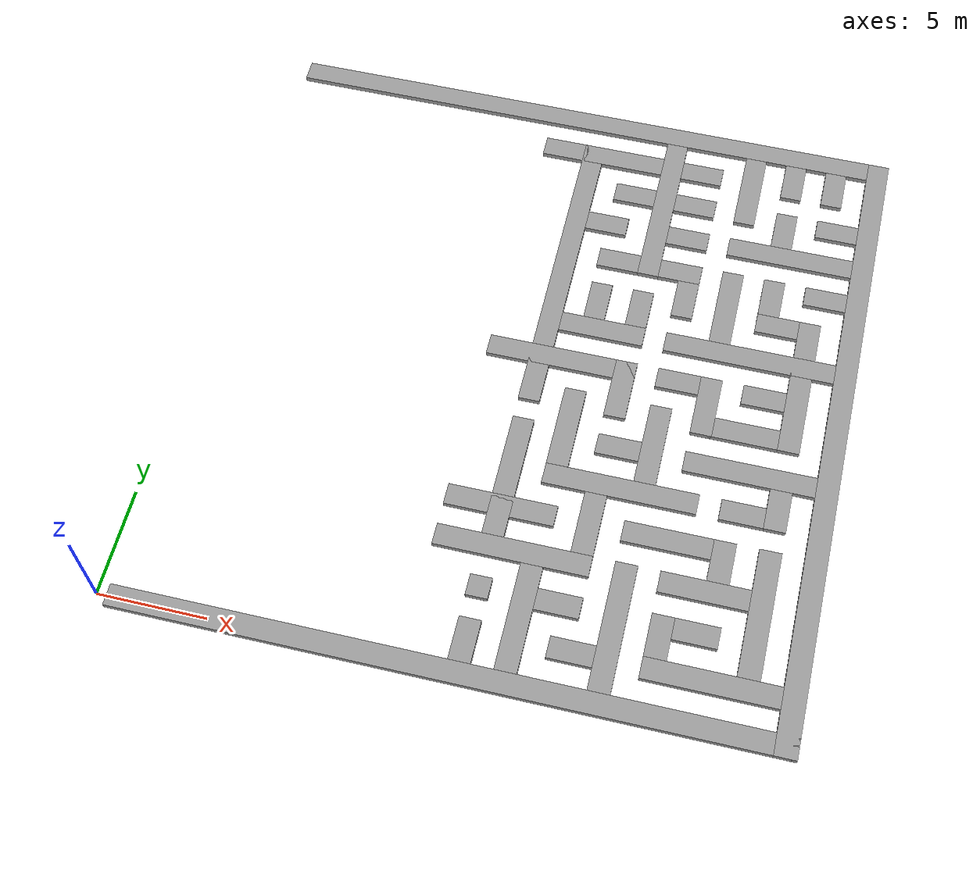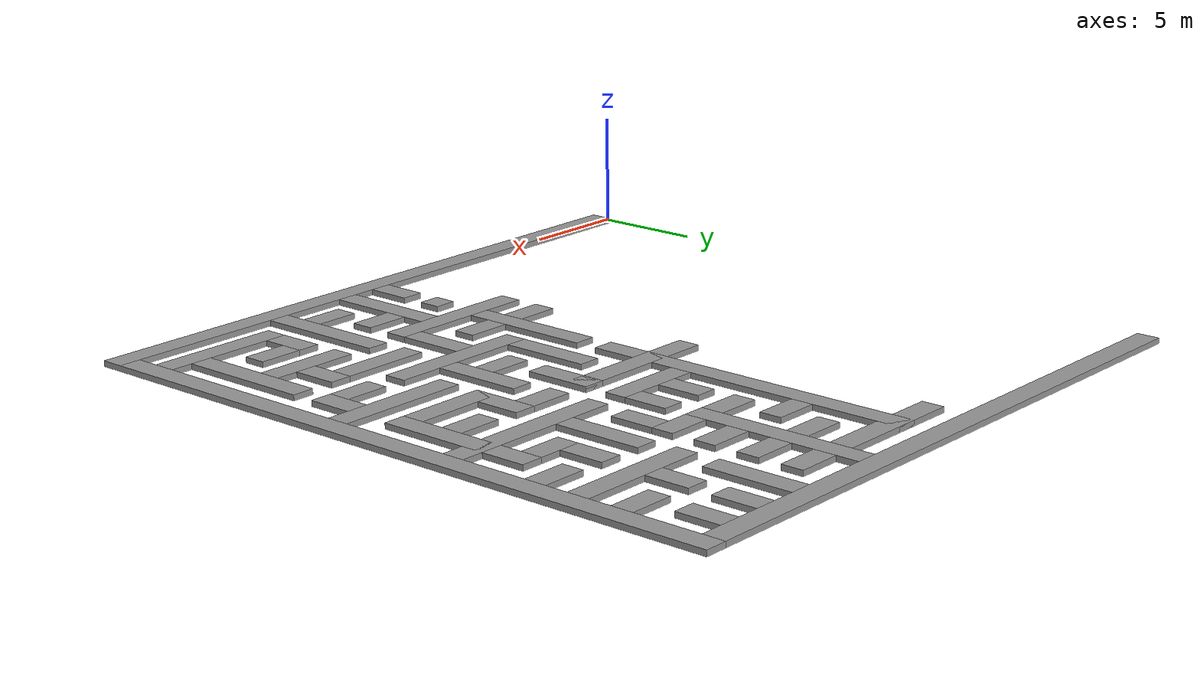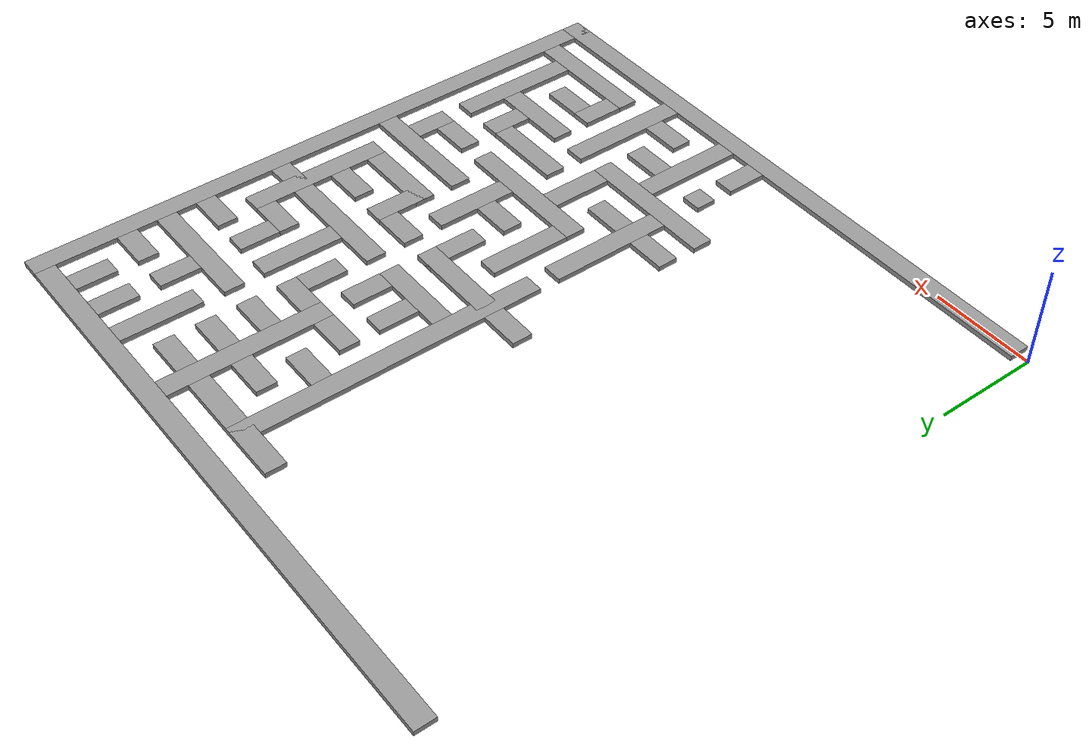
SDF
<sdf version="1.7">
 <model name="medium_maze">
  <pose>15 15 0 0 -0 0</pose>
  <link name="Wall_100">
   <collision name="Wall_100_Collision">
    <geometry><box><size>1 1 0.25</size></box></geometry>
    <pose>0 0 0.125 0 -0 0</pose>
   </collision>
   <visual name="Wall_100_Visual">
    <pose>0 0 0.125 0 -0 0</pose>
    <geometry><box><size>1 1 0.25</size></box></geometry>
    <material>
     <script><uri>file://media/materials/scripts/gazebo.material</uri><name>Gazebo/Grey</name></script>
     <ambient>1 1 1 1</ambient>
    </material>
    <meta><layer>0</layer></meta>
   </visual>
   <pose>1 -11 0 0 -0 0</pose>
  </link>
  <link name="Wall_110">
   <collision name="Wall_110_Collision">
    <geometry><box><size>2 1 0.25</size></box></geometry>
    <pose>0 0 0.125 0 -0 0</pose>
   </collision>
   <visual name="Wall_110_Visual">
    <pose>0 0 0.125 0 -0 0</pose>
    <geometry><box><size>2 1 0.25</size></box></geometry>
    <material>
     <script><uri>file://media/materials/scripts/gazebo.material</uri><name>Gazebo/Grey</name></script>
     <ambient>1 1 1 1</ambient>
    </material>
    <meta><layer>0</layer></meta>
   </visual>
   <pose>1 -13.5 0 0 -0 1.5708</pose>
  </link>
  <link name="Wall_112">
   <collision name="Wall_112_Collision">
    <geometry><box><size>5 1 0.25</size></box></geometry>
    <pose>0 0 0.125 0 -0 0</pose>
   </collision>
   <visual name="Wall_112_Visual">
    <pose>0 0 0.125 0 -0 0</pose>
    <geometry><box><size>5 1 0.25</size></box></geometry>
    <material>
     <script><uri>file://media/materials/scripts/gazebo.material</uri><name>Gazebo/Grey</name></script>
     <ambient>1 1 1 1</ambient>
    </material>
    <meta><layer>0</layer></meta>
   </visual>
   <pose>3 -12 0 0 -0 1.5708</pose>
  </link>
  <link name="Wall_114">
   <collision name="Wall_114_Collision">
    <geometry><box><size>2 1 0.25</size></box></geometry>
    <pose>0 0 0.125 0 -0 0</pose>
   </collision>
   <visual name="Wall_114_Visual">
    <pose>0 0 0.125 0 -0 0</pose>
    <geometry><box><size>2 1 0.25</size></box></geometry>
    <material>
     <script><uri>file://media/materials/scripts/gazebo.material</uri><name>Gazebo/Grey</name></script>
     <ambient>1 1 1 1</ambient>
    </material>
    <meta><layer>0</layer></meta>
   </visual>
   <pose>4.5 -11 0 0 -0 0</pose>
  </link>
  <link name="Wall_116">
   <collision name="Wall_116_Collision">
    <geometry><box><size>7 1 0.25</size></box></geometry>
    <pose>0 0 0.125 0 -0 0</pose>
   </collision>
   <visual name="Wall_116_Visual">
    <pose>0 0 0.125 0 -0 0</pose>
    <geometry><box><size>7 1 0.25</size></box></geometry>
    <material>
     <script><uri>file://media/materials/scripts/gazebo.material</uri><name>Gazebo/Grey</name></script>
     <ambient>1 1 1 1</ambient>
    </material>
    <meta><layer>0</layer></meta>
   </visual>
   <pose>2 -9 0 0 -0 0</pose>
  </link>
  <link name="Wall_118">
   <collision name="Wall_118_Collision">
    <geometry><box><size>6 1 0.25</size></box></geometry>
    <pose>0 0 0.125 0 -0 0</pose>
   </collision>
   <visual name="Wall_118_Visual">
    <pose>0 0 0.125 0 -0 0</pose>
    <geometry><box><size>6 1 0.25</size></box></geometry>
    <material>
     <script><uri>file://media/materials/scripts/gazebo.material</uri><name>Gazebo/Grey</name></script>
     <ambient>1 1 1 1</ambient>
    </material>
    <meta><layer>0</layer></meta>
   </visual>
   <pose>1 -5.5 0 0 -0 1.5708</pose>
  </link>
  <link name="Wall_120">
   <collision name="Wall_120_Collision">
    <geometry><box><size>4 1 0.25</size></box></geometry>
    <pose>0 0 0.125 0 -0 0</pose>
   </collision>
   <visual name="Wall_120_Visual">
    <pose>0 0 0.125 0 -0 0</pose>
    <geometry><box><size>4 1 0.25</size></box></geometry>
    <material>
     <script><uri>file://media/materials/scripts/gazebo.material</uri><name>Gazebo/Grey</name></script>
     <ambient>1 1 1 1</ambient>
    </material>
    <meta><layer>0</layer></meta>
   </visual>
   <pose>7 -2.5 0 0 -0 1.5708</pose>
  </link>
  <link name="Wall_122">
   <collision name="Wall_122_Collision">
    <geometry><box><size>4 1 0.25</size></box></geometry>
    <pose>0 0 0.125 0 -0 0</pose>
   </collision>
   <visual name="Wall_122_Visual">
    <pose>0 0 0.125 0 -0 0</pose>
    <geometry><box><size>4 1 0.25</size></box></geometry>
    <material>
     <script><uri>file://media/materials/scripts/gazebo.material</uri><name>Gazebo/Grey</name></script>
     <ambient>1 1 1 1</ambient>
    </material>
    <meta><layer>0</layer></meta>
   </visual>
   <pose>3 -2.5 0 0 -0 1.5708</pose>
  </link>
  <link name="Wall_124">
   <collision name="Wall_124_Collision">
    <geometry><box><size>5 1 0.25</size></box></geometry>
    <pose>0 0 0.125 0 -0 0</pose>
   </collision>
   <visual name="Wall_124_Visual">
    <pose>0 0 0.125 0 -0 0</pose>
    <geometry><box><size>5 1 0.25</size></box></geometry>
    <material>
     <script><uri>file://media/materials/scripts/gazebo.material</uri><name>Gazebo/Grey</name></script>
     <ambient>1 1 1 1</ambient>
    </material>
    <meta><layer>0</layer></meta>
   </visual>
   <pose>1 -7 0 0 -0 0</pose>
  </link>
  <link name="Wall_126">
   <collision name="Wall_126_Collision">
    <geometry><box><size>6 1 0.25</size></box></geometry>
    <pose>0 0 0.125 0 -0 0</pose>
   </collision>
   <visual name="Wall_126_Visual">
    <pose>0 0 0.125 0 -0 0</pose>
    <geometry><box><size>6 1 0.25</size></box></geometry>
    <material>
     <script><uri>file://media/materials/scripts/gazebo.material</uri><name>Gazebo/Grey</name></script>
     <ambient>1 1 1 1</ambient>
    </material>
    <meta><layer>0</layer></meta>
   </visual>
   <pose>11.5 -13 0 0 -0 3.14159</pose>
  </link>
  <link name="Wall_128">
   <collision name="Wall_128_Collision">
    <geometry><box><size>6 1 0.25</size></box></geometry>
    <pose>0 0 0.125 0 -0 0</pose>
   </collision>
   <visual name="Wall_128_Visual">
    <pose>0 0 0.125 0 -0 0</pose>
    <geometry><box><size>6 1 0.25</size></box></geometry>
    <material>
     <script><uri>file://media/materials/scripts/gazebo.material</uri><name>Gazebo/Grey</name></script>
     <ambient>1 1 1 1</ambient>
    </material>
    <meta><layer>0</layer></meta>
   </visual>
   <pose>7 -11.5 0 0 -0 1.5708</pose>
  </link>
  <link name="Wall_130">
   <collision name="Wall_130_Collision">
    <geometry><box><size>3 1 0.25</size></box></geometry>
    <pose>0 0 0.125 0 -0 0</pose>
   </collision>
   <visual name="Wall_130_Visual">
    <pose>0 0 0.125 0 -0 0</pose>
    <geometry><box><size>3 1 0.25</size></box></geometry>
    <material>
     <script><uri>file://media/materials/scripts/gazebo.material</uri><name>Gazebo/Grey</name></script>
     <ambient>1 1 1 1</ambient>
    </material>
    <meta><layer>0</layer></meta>
   </visual>
   <pose>5 -7 0 0 -0 1.5708</pose>
  </link>
  <link name="Wall_132">
   <collision name="Wall_132_Collision">
    <geometry><box><size>2 1 0.25</size></box></geometry>
    <pose>0 0 0.125 0 -0 0</pose>
   </collision>
   <visual name="Wall_132_Visual">
    <pose>0 0 0.125 0 -0 0</pose>
    <geometry><box><size>2 1 0.25</size></box></geometry>
    <material>
     <script><uri>file://media/materials/scripts/gazebo.material</uri><name>Gazebo/Grey</name></script>
     <ambient>1 1 1 1</ambient>
    </material>
    <meta><layer>0</layer></meta>
   </visual>
   <pose>10.5 -11 0 0 -0 0</pose>
  </link>
  <link name="Wall_134">
   <collision name="Wall_134_Collision">
    <geometry><box><size>2 1 0.25</size></box></geometry>
    <pose>0 0 0.125 0 -0 0</pose>
   </collision>
   <visual name="Wall_134_Visual">
    <pose>0 0 0.125 0 -0 0</pose>
    <geometry><box><size>2 1 0.25</size></box></geometry>
    <material>
     <script><uri>file://media/materials/scripts/gazebo.material</uri><name>Gazebo/Grey</name></script>
     <ambient>1 1 1 1</ambient>
    </material>
    <meta><layer>0</layer></meta>
   </visual>
   <pose>9 -11.5 0 0 -0 1.5708</pose>
  </link>
  <link name="Wall_136">
   <collision name="Wall_136_Collision">
    <geometry><box><size>2 1 0.25</size></box></geometry>
    <pose>0 0 0.125 0 -0 0</pose>
   </collision>
   <visual name="Wall_136_Visual">
    <pose>0 0 0.125 0 -0 0</pose>
    <geometry><box><size>2 1 0.25</size></box></geometry>
    <material>
     <script><uri>file://media/materials/scripts/gazebo.material</uri><name>Gazebo/Grey</name></script>
     <ambient>1 1 1 1</ambient>
    </material>
    <meta><layer>0</layer></meta>
   </visual>
   <pose>5.5 -3 0 0 -0 3.14159</pose>
  </link>
  <link name="Wall_138">
   <collision name="Wall_138_Collision">
    <geometry><box><size>7 1 0.25</size></box></geometry>
    <pose>0 0 0.125 0 -0 0</pose>
   </collision>
   <visual name="Wall_138_Visual">
    <pose>0 0 0.125 0 -0 0</pose>
    <geometry><box><size>7 1 0.25</size></box></geometry>
    <material>
     <script><uri>file://media/materials/scripts/gazebo.material</uri><name>Gazebo/Grey</name></script>
     <ambient>1 1 1 1</ambient>
    </material>
    <meta><layer>0</layer></meta>
   </visual>
   <pose>6 -5 0 0 -0 0</pose>
  </link>
  <link name="Wall_140">
   <collision name="Wall_140_Collision">
    <geometry><box><size>2 1 0.25</size></box></geometry>
    <pose>0 0 0.125 0 -0 0</pose>
   </collision>
   <visual name="Wall_140_Visual">
    <pose>0 0 0.125 0 -0 0</pose>
    <geometry><box><size>2 1 0.25</size></box></geometry>
    <material>
     <script><uri>file://media/materials/scripts/gazebo.material</uri><name>Gazebo/Grey</name></script>
     <ambient>1 1 1 1</ambient>
    </material>
    <meta><layer>0</layer></meta>
   </visual>
   <pose>5.5 -13 0 0 -0 3.14159</pose>
  </link>
  <link name="Wall_142">
   <collision name="Wall_142_Collision">
    <geometry><box><size>4 1 0.25</size></box></geometry>
    <pose>0 0 0.125 0 -0 0</pose>
   </collision>
   <visual name="Wall_142_Visual">
    <pose>0 0 0.125 0 -0 0</pose>
    <geometry><box><size>4 1 0.25</size></box></geometry>
    <material>
     <script><uri>file://media/materials/scripts/gazebo.material</uri><name>Gazebo/Grey</name></script>
     <ambient>1 1 1 1</ambient>
    </material>
    <meta><layer>0</layer></meta>
   </visual>
   <pose>10.5 -9 0 0 -0 3.14159</pose>
  </link>
  <link name="Wall_144">
   <collision name="Wall_144_Collision">
    <geometry><box><size>2 1 0.25</size></box></geometry>
    <pose>0 0 0.125 0 -0 0</pose>
   </collision>
   <visual name="Wall_144_Visual">
    <pose>0 0 0.125 0 -0 0</pose>
    <geometry><box><size>2 1 0.25</size></box></geometry>
    <material>
     <script><uri>file://media/materials/scripts/gazebo.material</uri><name>Gazebo/Grey</name></script>
     <ambient>1 1 1 1</ambient>
    </material>
    <meta><layer>0</layer></meta>
   </visual>
   <pose>11.5 -5 0 0 -0 0</pose>
  </link>
  <link name="Wall_146">
   <collision name="Wall_146_Collision">
    <geometry><box><size>6 1 0.25</size></box></geometry>
    <pose>0 0 0.125 0 -0 0</pose>
   </collision>
   <visual name="Wall_146_Visual">
    <pose>0 0 0.125 0 -0 0</pose>
    <geometry><box><size>6 1 0.25</size></box></geometry>
    <material>
     <script><uri>file://media/materials/scripts/gazebo.material</uri><name>Gazebo/Grey</name></script>
     <ambient>1 1 1 1</ambient>
    </material>
    <meta><layer>0</layer></meta>
   </visual>
   <pose>11.5 -3 0 0 -0 3.14159</pose>
  </link>
  <link name="Wall_148">
   <collision name="Wall_148_Collision">
    <geometry><box><size>4 1 0.25</size></box></geometry>
    <pose>0 0 0.125 0 -0 0</pose>
   </collision>
   <visual name="Wall_148_Visual">
    <pose>0 0 0.125 0 -0 0</pose>
    <geometry><box><size>4 1 0.25</size></box></geometry>
    <material>
     <script><uri>file://media/materials/scripts/gazebo.material</uri><name>Gazebo/Grey</name></script>
     <ambient>1 1 1 1</ambient>
    </material>
    <meta><layer>0</layer></meta>
   </visual>
   <pose>8.5 -7 0 0 -0 3.14159</pose>
  </link>
  <link name="Wall_150">
   <collision name="Wall_150_Collision">
    <geometry><box><size>2 1 0.25</size></box></geometry>
    <pose>0 0 0.125 0 -0 0</pose>
   </collision>
   <visual name="Wall_150_Visual">
    <pose>0 0 0.125 0 -0 0</pose>
    <geometry><box><size>2 1 0.25</size></box></geometry>
    <material>
     <script><uri>file://media/materials/scripts/gazebo.material</uri><name>Gazebo/Grey</name></script>
     <ambient>1 1 1 1</ambient>
    </material>
    <meta><layer>0</layer></meta>
   </visual>
   <pose>13 -4.5 0 0 -0 1.5708</pose>
  </link>
  <link name="Wall_152">
   <collision name="Wall_152_Collision">
    <geometry><box><size>8 1 0.25</size></box></geometry>
    <pose>0 0 0.125 0 -0 0</pose>
   </collision>
   <visual name="Wall_152_Visual">
    <pose>0 0 0.125 0 -0 0</pose>
    <geometry><box><size>8 1 0.25</size></box></geometry>
    <material>
     <script><uri>file://media/materials/scripts/gazebo.material</uri><name>Gazebo/Grey</name></script>
     <ambient>1 1 1 1</ambient>
    </material>
    <meta><layer>0</layer></meta>
   </visual>
   <pose>10.5 3 0 0 -0 3.14159</pose>
  </link>
  <link name="Wall_154">
   <collision name="Wall_154_Collision">
    <geometry><box><size>7 1 0.25</size></box></geometry>
    <pose>0 0 0.125 0 -0 0</pose>
   </collision>
   <visual name="Wall_154_Visual">
    <pose>0 0 0.125 0 -0 0</pose>
    <geometry><box><size>7 1 0.25</size></box></geometry>
    <material>
     <script><uri>file://media/materials/scripts/gazebo.material</uri><name>Gazebo/Grey</name></script>
     <ambient>1 1 1 1</ambient>
    </material>
    <meta><layer>0</layer></meta>
   </visual>
   <pose>13 2 0 0 -0 1.5708</pose>
  </link>
  <link name="Wall_156">
   <collision name="Wall_156_Collision">
    <geometry><box><size>2 1 0.25</size></box></geometry>
    <pose>0 0 0.125 0 -0 0</pose>
   </collision>
   <visual name="Wall_156_Visual">
    <pose>0 0 0.125 0 -0 0</pose>
    <geometry><box><size>2 1 0.25</size></box></geometry>
    <material>
     <script><uri>file://media/materials/scripts/gazebo.material</uri><name>Gazebo/Grey</name></script>
     <ambient>1 1 1 1</ambient>
    </material>
    <meta><layer>0</layer></meta>
   </visual>
   <pose>11.5 5 0 0 -0 3.14159</pose>
  </link>
  <link name="Wall_158">
   <collision name="Wall_158_Collision">
    <geometry><box><size>2 1 0.25</size></box></geometry>
    <pose>0 0 0.125 0 -0 0</pose>
   </collision>
   <visual name="Wall_158_Visual">
    <pose>0 0 0.125 0 -0 0</pose>
    <geometry><box><size>2 1 0.25</size></box></geometry>
    <material>
     <script><uri>file://media/materials/scripts/gazebo.material</uri><name>Gazebo/Grey</name></script>
     <ambient>1 1 1 1</ambient>
    </material>
    <meta><layer>0</layer></meta>
   </visual>
   <pose>11 -7.5 0 0 -0 -1.5708</pose>
  </link>
  <link name="Wall_160">
   <collision name="Wall_160_Collision">
    <geometry><box><size>3 1 0.25</size></box></geometry>
    <pose>0 0 0.125 0 -0 0</pose>
   </collision>
   <visual name="Wall_160_Visual">
    <pose>0 0 0.125 0 -0 0</pose>
    <geometry><box><size>3 1 0.25</size></box></geometry>
    <material>
     <script><uri>file://media/materials/scripts/gazebo.material</uri><name>Gazebo/Grey</name></script>
     <ambient>1 1 1 1</ambient>
    </material>
    <meta><layer>0</layer></meta>
   </visual>
   <pose>9 0 0 0 -0 1.5708</pose>
  </link>
  <link name="Wall_162">
   <collision name="Wall_162_Collision">
    <geometry><box><size>2 1 0.25</size></box></geometry>
    <pose>0 0 0.125 0 -0 0</pose>
   </collision>
   <visual name="Wall_162_Visual">
    <pose>0 0 0.125 0 -0 0</pose>
    <geometry><box><size>2 1 0.25</size></box></geometry>
    <material>
     <script><uri>file://media/materials/scripts/gazebo.material</uri><name>Gazebo/Grey</name></script>
     <ambient>1 1 1 1</ambient>
    </material>
    <meta><layer>0</layer></meta>
   </visual>
   <pose>11 6.5 0 0 -0 1.5708</pose>
  </link>
  <link name="Wall_164">
   <collision name="Wall_164_Collision">
    <geometry><box><size>4 1 0.25</size></box></geometry>
    <pose>0 0 0.125 0 -0 0</pose>
   </collision>
   <visual name="Wall_164_Visual">
    <pose>0 0 0.125 0 -0 0</pose>
    <geometry><box><size>4 1 0.25</size></box></geometry>
    <material>
     <script><uri>file://media/materials/scripts/gazebo.material</uri><name>Gazebo/Grey</name></script>
     <ambient>1 1 1 1</ambient>
    </material>
    <meta><layer>0</layer></meta>
   </visual>
   <pose>9 5.5 0 0 -0 1.5708</pose>
  </link>
  <link name="Wall_166">
   <collision name="Wall_166_Collision">
    <geometry><box><size>4 1 0.25</size></box></geometry>
    <pose>0 0 0.125 0 -0 0</pose>
   </collision>
   <visual name="Wall_166_Visual">
    <pose>0 0 0.125 0 -0 0</pose>
    <geometry><box><size>4 1 0.25</size></box></geometry>
    <material>
     <script><uri>file://media/materials/scripts/gazebo.material</uri><name>Gazebo/Grey</name></script>
     <ambient>1 1 1 1</ambient>
    </material>
    <meta><layer>0</layer></meta>
   </visual>
   <pose>10.5 -1 0 0 -0 3.14159</pose>
  </link>
  <link name="Wall_168">
   <collision name="Wall_168_Collision">
    <geometry><box><size>2 1 0.25</size></box></geometry>
    <pose>0 0 0.125 0 -0 0</pose>
   </collision>
   <visual name="Wall_168_Visual">
    <pose>0 0 0.125 0 -0 0</pose>
    <geometry><box><size>2 1 0.25</size></box></geometry>
    <material>
     <script><uri>file://media/materials/scripts/gazebo.material</uri><name>Gazebo/Grey</name></script>
     <ambient>1 1 1 1</ambient>
    </material>
    <meta><layer>0</layer></meta>
   </visual>
   <pose>7.5 1 0 0 -0 3.14159</pose>
  </link>
  <link name="Wall_170">
   <collision name="Wall_170_Collision">
    <geometry><box><size>6 1 0.25</size></box></geometry>
    <pose>0 0 0.125 0 -0 0</pose>
   </collision>
   <visual name="Wall_170_Visual">
    <pose>0 0 0.125 0 -0 0</pose>
    <geometry><box><size>6 1 0.25</size></box></geometry>
    <material>
     <script><uri>file://media/materials/scripts/gazebo.material</uri><name>Gazebo/Grey</name></script>
     <ambient>1 1 1 1</ambient>
    </material>
    <meta><layer>0</layer></meta>
   </visual>
   <pose>13 -9.5 0 0 -0 1.5708</pose>
  </link>
  <link name="Wall_172">
   <collision name="Wall_172_Collision">
    <geometry><box><size>4 1 0.25</size></box></geometry>
    <pose>0 0 0.125 0 -0 0</pose>
   </collision>
   <visual name="Wall_172_Visual">
    <pose>0 0 0.125 0 -0 0</pose>
    <geometry><box><size>4 1 0.25</size></box></geometry>
    <material>
     <script><uri>file://media/materials/scripts/gazebo.material</uri><name>Gazebo/Grey</name></script>
     <ambient>1 1 1 1</ambient>
    </material>
    <meta><layer>0</layer></meta>
   </visual>
   <pose>9 12.5 0 0 -0 -1.5708</pose>
  </link>
  <link name="Wall_174">
   <collision name="Wall_174_Collision">
    <geometry><box><size>2 1 0.25</size></box></geometry>
    <pose>0 0 0.125 0 -0 0</pose>
   </collision>
   <visual name="Wall_174_Visual">
    <pose>0 0 0.125 0 -0 0</pose>
    <geometry><box><size>2 1 0.25</size></box></geometry>
    <material>
     <script><uri>file://media/materials/scripts/gazebo.material</uri><name>Gazebo/Grey</name></script>
     <ambient>1 1 1 1</ambient>
    </material>
    <meta><layer>0</layer></meta>
   </visual>
   <pose>11 13.5 0 0 -0 -1.5708</pose>
  </link>
  <link name="Wall_176">
   <collision name="Wall_176_Collision">
    <geometry><box><size>2 1 0.25</size></box></geometry>
    <pose>0 0 0.125 0 -0 0</pose>
   </collision>
   <visual name="Wall_176_Visual">
    <pose>0 0 0.125 0 -0 0</pose>
    <geometry><box><size>2 1 0.25</size></box></geometry>
    <material>
     <script><uri>file://media/materials/scripts/gazebo.material</uri><name>Gazebo/Grey</name></script>
     <ambient>1 1 1 1</ambient>
    </material>
    <meta><layer>0</layer></meta>
   </visual>
   <pose>13 13.5 0 0 -0 -1.5708</pose>
  </link>
  <link name="Wall_178">
   <collision name="Wall_178_Collision">
    <geometry><box><size>2 1 0.25</size></box></geometry>
    <pose>0 0 0.125 0 -0 0</pose>
   </collision>
   <visual name="Wall_178_Visual">
    <pose>0 0 0.125 0 -0 0</pose>
    <geometry><box><size>2 1 0.25</size></box></geometry>
    <material>
     <script><uri>file://media/materials/scripts/gazebo.material</uri><name>Gazebo/Grey</name></script>
     <ambient>1 1 1 1</ambient>
    </material>
    <meta><layer>0</layer></meta>
   </visual>
   <pose>13.5 11 0 0 -0 3.14159</pose>
  </link>
  <link name="Wall_180">
   <collision name="Wall_180_Collision">
    <geometry><box><size>2 1 0.25</size></box></geometry>
    <pose>0 0 0.125 0 -0 0</pose>
   </collision>
   <visual name="Wall_180_Visual">
    <pose>0 0 0.125 0 -0 0</pose>
    <geometry><box><size>2 1 0.25</size></box></geometry>
    <material>
     <script><uri>file://media/materials/scripts/gazebo.material</uri><name>Gazebo/Grey</name></script>
     <ambient>1 1 1 1</ambient>
    </material>
    <meta><layer>0</layer></meta>
   </visual>
   <pose>13.5 7 0 0 -0 3.14159</pose>
  </link>
  <link name="Wall_182">
   <collision name="Wall_182_Collision">
    <geometry><box><size>6 1 0.25</size></box></geometry>
    <pose>0 0 0.125 0 -0 0</pose>
   </collision>
   <visual name="Wall_182_Visual">
    <pose>0 0 0.125 0 -0 0</pose>
    <geometry><box><size>6 1 0.25</size></box></geometry>
    <material>
     <script><uri>file://media/materials/scripts/gazebo.material</uri><name>Gazebo/Grey</name></script>
     <ambient>1 1 1 1</ambient>
    </material>
    <meta><layer>0</layer></meta>
   </visual>
   <pose>11.5 9 0 0 -0 3.14159</pose>
  </link>
  <link name="Wall_184">
   <collision name="Wall_184_Collision">
    <geometry><box><size>8 1 0.25</size></box></geometry>
    <pose>0 0 0.125 0 -0 0</pose>
   </collision>
   <visual name="Wall_184_Visual">
    <pose>0 0 0.125 0 -0 0</pose>
    <geometry><box><size>8 1 0.25</size></box></geometry>
    <material>
     <script><uri>file://media/materials/scripts/gazebo.material</uri><name>Gazebo/Grey</name></script>
     <ambient>1 1 1 1</ambient>
    </material>
    <meta><layer>0</layer></meta>
   </visual>
   <pose>5 10.5 0 0 -0 -1.5708</pose>
  </link>
  <link name="Wall_186">
   <collision name="Wall_186_Collision">
    <geometry><box><size>2 1 0.25</size></box></geometry>
    <pose>0 0 0.125 0 -0 0</pose>
   </collision>
   <visual name="Wall_186_Visual">
    <pose>0 0 0.125 0 -0 0</pose>
    <geometry><box><size>2 1 0.25</size></box></geometry>
    <material>
     <script><uri>file://media/materials/scripts/gazebo.material</uri><name>Gazebo/Grey</name></script>
     <ambient>1 1 1 1</ambient>
    </material>
    <meta><layer>0</layer></meta>
   </visual>
   <pose>6.5 11 0 0 -0 0</pose>
  </link>
  <link name="Wall_188">
   <collision name="Wall_188_Collision">
    <geometry><box><size>2 1 0.25</size></box></geometry>
    <pose>0 0 0.125 0 -0 0</pose>
   </collision>
   <visual name="Wall_188_Visual">
    <pose>0 0 0.125 0 -0 0</pose>
    <geometry><box><size>2 1 0.25</size></box></geometry>
    <material>
     <script><uri>file://media/materials/scripts/gazebo.material</uri><name>Gazebo/Grey</name></script>
     <ambient>1 1 1 1</ambient>
    </material>
    <meta><layer>0</layer></meta>
   </visual>
   <pose>6.5 13 0 0 -0 0</pose>
  </link>
  <link name="Wall_190">
   <collision name="Wall_190_Collision">
    <geometry><box><size>2 1 0.25</size></box></geometry>
    <pose>0 0 0.125 0 -0 0</pose>
   </collision>
   <visual name="Wall_190_Visual">
    <pose>0 0 0.125 0 -0 0</pose>
    <geometry><box><size>2 1 0.25</size></box></geometry>
    <material>
     <script><uri>file://media/materials/scripts/gazebo.material</uri><name>Gazebo/Grey</name></script>
     <ambient>1 1 1 1</ambient>
    </material>
    <meta><layer>0</layer></meta>
   </visual>
   <pose>11 10.5 0 0 -0 1.5708</pose>
  </link>
  <link name="Wall_192">
   <collision name="Wall_192_Collision">
    <geometry><box><size>2 1 0.25</size></box></geometry>
    <pose>0 0 0.125 0 -0 0</pose>
   </collision>
   <visual name="Wall_192_Visual">
    <pose>0 0 0.125 0 -0 0</pose>
    <geometry><box><size>2 1 0.25</size></box></geometry>
    <material>
     <script><uri>file://media/materials/scripts/gazebo.material</uri><name>Gazebo/Grey</name></script>
     <ambient>1 1 1 1</ambient>
    </material>
    <meta><layer>0</layer></meta>
   </visual>
   <pose>6.5 9 0 0 -0 0</pose>
  </link>
  <link name="Wall_194">
   <collision name="Wall_194_Collision">
    <geometry><box><size>2 1 0.25</size></box></geometry>
    <pose>0 0 0.125 0 -0 0</pose>
   </collision>
   <visual name="Wall_194_Visual">
    <pose>0 0 0.125 0 -0 0</pose>
    <geometry><box><size>2 1 0.25</size></box></geometry>
    <material>
     <script><uri>file://media/materials/scripts/gazebo.material</uri><name>Gazebo/Grey</name></script>
     <ambient>1 1 1 1</ambient>
    </material>
    <meta><layer>0</layer></meta>
   </visual>
   <pose>6.5 7 0 0 -0 0</pose>
  </link>
  <link name="Wall_196">
   <collision name="Wall_196_Collision">
    <geometry><box><size>2 1 0.25</size></box></geometry>
    <pose>0 0 0.125 0 -0 0</pose>
   </collision>
   <visual name="Wall_196_Visual">
    <pose>0 0 0.125 0 -0 0</pose>
    <geometry><box><size>2 1 0.25</size></box></geometry>
    <material>
     <script><uri>file://media/materials/scripts/gazebo.material</uri><name>Gazebo/Grey</name></script>
     <ambient>1 1 1 1</ambient>
    </material>
    <meta><layer>0</layer></meta>
   </visual>
   <pose>7 5.5 0 0 -0 -1.5708</pose>
  </link>
  <link name="Wall_2">
   <collision name="Wall_2_Collision">
    <geometry><box><size>30 1 0.25</size></box></geometry>
    <pose>0 0 0.125 0 -0 0</pose>
   </collision>
   <visual name="Wall_2_Visual">
    <pose>0 0 0.125 0 -0 0</pose>
    <geometry><box><size>30 1 0.25</size></box></geometry>
    <material>
     <script><uri>file://media/materials/scripts/gazebo.material</uri><name>Gazebo/Grey</name></script>
     <ambient>1 1 1 1</ambient>
    </material>
    <meta><layer>0</layer></meta>
   </visual>
   <pose>0.5 -15 0 0 -0 0</pose>
  </link>
  <link name="Wall_200">
   <collision name="Wall_200_Collision">
    <geometry><box><size>6 1 0.25</size></box></geometry>
    <pose>0 0 0.125 0 -0 0</pose>
   </collision>
   <visual name="Wall_200_Visual">
    <pose>0 0 0.125 0 -0 0</pose>
    <geometry><box><size>6 1 0.25</size></box></geometry>
    <material>
     <script><uri>file://media/materials/scripts/gazebo.material</uri><name>Gazebo/Grey</name></script>
     <ambient>1 1 1 1</ambient>
    </material>
    <meta><layer>0</layer></meta>
   </visual>
   <pose>1.5 13 0 0 -0 3.14159</pose>
  </link>
  <link name="Wall_202">
   <collision name="Wall_202_Collision">
    <geometry><box><size>2 1 0.25</size></box></geometry>
    <pose>0 0 0.125 0 -0 0</pose>
   </collision>
   <visual name="Wall_202_Visual">
    <pose>0 0 0.125 0 -0 0</pose>
    <geometry><box><size>2 1 0.25</size></box></geometry>
    <material>
     <script><uri>file://media/materials/scripts/gazebo.material</uri><name>Gazebo/Grey</name></script>
     <ambient>1 1 1 1</ambient>
    </material>
    <meta><layer>0</layer></meta>
   </visual>
   <pose>3.5 7 0 0 -0 3.14159</pose>
  </link>
  <link name="Wall_204">
   <collision name="Wall_204_Collision">
    <geometry><box><size>15 1 0.25</size></box></geometry>
    <pose>0 0 0.125 0 -0 0</pose>
   </collision>
   <visual name="Wall_204_Visual">
    <pose>0 0 0.125 0 -0 0</pose>
    <geometry><box><size>15 1 0.25</size></box></geometry>
    <material>
     <script><uri>file://media/materials/scripts/gazebo.material</uri><name>Gazebo/Grey</name></script>
     <ambient>1 1 1 1</ambient>
    </material>
    <meta><layer>0</layer></meta>
   </visual>
   <pose>1 6 0 0 -0 -1.5708</pose>
  </link>
  <link name="Wall_206">
   <collision name="Wall_206_Collision">
    <geometry><box><size>3 1 0.25</size></box></geometry>
    <pose>0 0 0.125 0 -0 0</pose>
   </collision>
   <visual name="Wall_206_Visual">
    <pose>0 0 0.125 0 -0 0</pose>
    <geometry><box><size>3 1 0.25</size></box></geometry>
    <material>
     <script><uri>file://media/materials/scripts/gazebo.material</uri><name>Gazebo/Grey</name></script>
     <ambient>1 1 1 1</ambient>
    </material>
    <meta><layer>0</layer></meta>
   </visual>
   <pose>5 0 0 0 -0 -1.5708</pose>
  </link>
  <link name="Wall_208">
   <collision name="Wall_208_Collision">
    <geometry><box><size>7 1 0.25</size></box></geometry>
    <pose>0 0 0.125 0 -0 0</pose>
   </collision>
   <visual name="Wall_208_Visual">
    <pose>0 0 0.125 0 -0 0</pose>
    <geometry><box><size>7 1 0.25</size></box></geometry>
    <material>
     <script><uri>file://media/materials/scripts/gazebo.material</uri><name>Gazebo/Grey</name></script>
     <ambient>1 1 1 1</ambient>
    </material>
    <meta><layer>0</layer></meta>
   </visual>
   <pose>2 1 0 0 -0 0</pose>
  </link>
  <link name="Wall_210">
   <collision name="Wall_210_Collision">
    <geometry><box><size>2 1 0.25</size></box></geometry>
    <pose>0 0 0.125 0 -0 0</pose>
   </collision>
   <visual name="Wall_210_Visual">
    <pose>0 0 0.125 0 -0 0</pose>
    <geometry><box><size>2 1 0.25</size></box></geometry>
    <material>
     <script><uri>file://media/materials/scripts/gazebo.material</uri><name>Gazebo/Grey</name></script>
     <ambient>1 1 1 1</ambient>
    </material>
    <meta><layer>0</layer></meta>
   </visual>
   <pose>3.5 11 0 0 -0 3.14159</pose>
  </link>
  <link name="Wall_212">
   <collision name="Wall_212_Collision">
    <geometry><box><size>4 1 0.25</size></box></geometry>
    <pose>0 0 0.125 0 -0 0</pose>
   </collision>
   <visual name="Wall_212_Visual">
    <pose>0 0 0.125 0 -0 0</pose>
    <geometry><box><size>4 1 0.25</size></box></geometry>
    <material>
     <script><uri>file://media/materials/scripts/gazebo.material</uri><name>Gazebo/Grey</name></script>
     <ambient>1 1 1 1</ambient>
    </material>
    <meta><layer>0</layer></meta>
   </visual>
   <pose>3.5 3 0 0 -0 0</pose>
  </link>
  <link name="Wall_214">
   <collision name="Wall_214_Collision">
    <geometry><box><size>2 1 0.25</size></box></geometry>
    <pose>0 0 0.125 0 -0 0</pose>
   </collision>
   <visual name="Wall_214_Visual">
    <pose>0 0 0.125 0 -0 0</pose>
    <geometry><box><size>2 1 0.25</size></box></geometry>
    <material>
     <script><uri>file://media/materials/scripts/gazebo.material</uri><name>Gazebo/Grey</name></script>
     <ambient>1 1 1 1</ambient>
    </material>
    <meta><layer>0</layer></meta>
   </visual>
   <pose>2.5 9 0 0 -0 0</pose>
  </link>
  <link name="Wall_216">
   <collision name="Wall_216_Collision">
    <geometry><box><size>2 1 0.25</size></box></geometry>
    <pose>0 0 0.125 0 -0 0</pose>
   </collision>
   <visual name="Wall_216_Visual">
    <pose>0 0 0.125 0 -0 0</pose>
    <geometry><box><size>2 1 0.25</size></box></geometry>
    <material>
     <script><uri>file://media/materials/scripts/gazebo.material</uri><name>Gazebo/Grey</name></script>
     <ambient>1 1 1 1</ambient>
    </material>
    <meta><layer>0</layer></meta>
   </visual>
   <pose>3 4.5 0 0 -0 -1.5708</pose>
  </link>
  <link name="Wall_218">
   <collision name="Wall_218_Collision">
    <geometry><box><size>2 1 0.25</size></box></geometry>
    <pose>0 0 0.125 0 -0 0</pose>
   </collision>
   <visual name="Wall_218_Visual">
    <pose>0 0 0.125 0 -0 0</pose>
    <geometry><box><size>2 1 0.25</size></box></geometry>
    <material>
     <script><uri>file://media/materials/scripts/gazebo.material</uri><name>Gazebo/Grey</name></script>
     <ambient>1 1 1 1</ambient>
    </material>
    <meta><layer>0</layer></meta>
   </visual>
   <pose>5 4.5 0 0 -0 1.5708</pose>
  </link>
  <link name="Wall_222">
   <collision name="Wall_222_Collision">
    <geometry><box><size>2 1 0.25</size></box></geometry>
    <pose>0 0 0.125 0 -0 0</pose>
   </collision>
   <visual name="Wall_222_Visual">
    <pose>0 0 0.125 0 -0 0</pose>
    <geometry><box><size>2 1 0.25</size></box></geometry>
    <material>
     <script><uri>file://media/materials/scripts/gazebo.material</uri><name>Gazebo/Grey</name></script>
     <ambient>1 1 1 1</ambient>
    </material>
    <meta><layer>0</layer></meta>
   </visual>
   <pose>11.5 1 0 0 -0 3.14159</pose>
  </link>
  <link name="Wall_4">
   <collision name="Wall_4_Collision">
    <geometry><box><size>29 1 0.25</size></box></geometry>
    <pose>0 0 0.125 0 -0 0</pose>
   </collision>
   <visual name="Wall_4_Visual">
    <pose>0 0 0.125 0 -0 0</pose>
    <geometry><box><size>29 1 0.25</size></box></geometry>
    <material>
     <script><uri>file://media/materials/scripts/gazebo.material</uri><name>Gazebo/Grey</name></script>
     <ambient>1 1 1 1</ambient>
    </material>
    <meta><layer>0</layer></meta>
   </visual>
   <pose>0 15 0 0 -0 0</pose>
  </link>
  <link name="Wall_6">
   <collision name="Wall_6_Collision">
    <geometry><box><size>31 1 0.25</size></box></geometry>
    <pose>0 0 0.125 0 -0 0</pose>
   </collision>
   <visual name="Wall_6_Visual">
    <pose>0 0 0.125 0 -0 0</pose>
    <geometry><box><size>31 1 0.25</size></box></geometry>
    <material>
     <script><uri>file://media/materials/scripts/gazebo.material</uri><name>Gazebo/Grey</name></script>
     <ambient>1 1 1 1</ambient>
    </material>
    <meta><layer>0</layer></meta>
   </visual>
   <pose>15 0 0 0 -0 1.5708</pose>
  </link>
  <static>1</static>
 </model>
</sdf>
